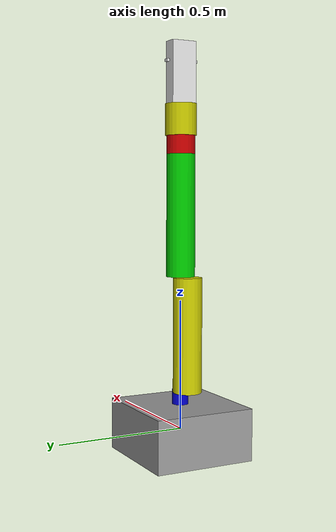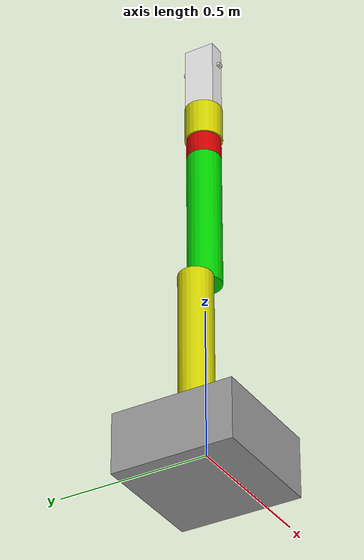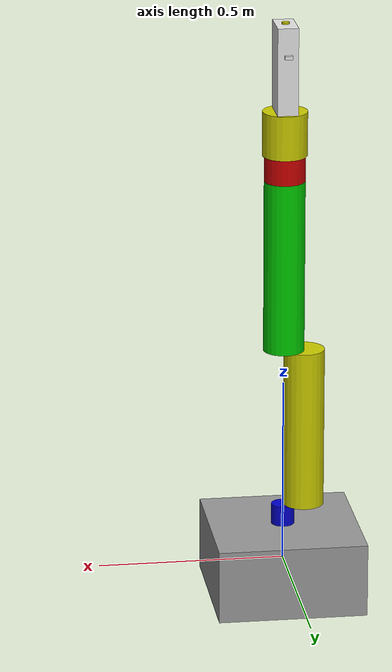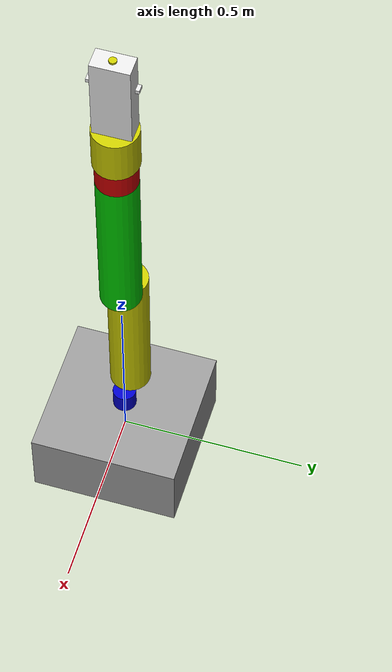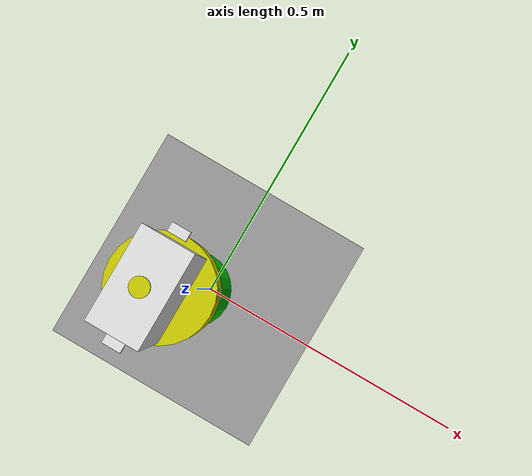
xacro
<?xml version="1.0"?>
<robot name="manipulador">

  <!-- 1. BASE -->
  <link name="base_link">
    <inertial>
      <origin xyz="0 0 0" rpy="0 0 0"/>
      <mass value="5.0"/>
      <inertia ixx="0.1" ixy="0.0" ixz="0.0"
               iyy="0.1" iyz="0.0"
               izz="0.1"/>
    </inertial>
    <visual>
      <origin xyz="0 0 0" rpy="0 0 0"/>
      <geometry>
        <box size="0.4 0.4 0.2"/>
      </geometry>
      <material name="grey">
        <color rgba="0.6 0.6 0.6 1.0"/>
      </material>
    </visual>
    <collision>
      <origin xyz="0 0 0" rpy="0 0 0"/>
      <geometry>
        <box size="0.4 0.4 0.2"/>
      </geometry>
    </collision>
  </link>

  <!-- 2. LINK1 -->
  <link name="link1">
    <inertial>
      <origin xyz="0 0 0.075" rpy="0 0 0"/>
      <mass value="2.0"/>
      <inertia ixx="0.000534" ixy="0.0" ixz="0.0"
               iyy="0.000534" iyz="0.0"
               izz="0.000992"/>
    </inertial>
    <visual>
      <origin xyz="0 0 0.0275" rpy="0 0 0"/>
      <geometry>
        <cylinder radius="0.0315" length="0.055"/>
      </geometry>
      <material name="blue">
        <color rgba="0.0 0.0 0.8 1.0"/>
      </material>
    </visual>
    <collision>
      <origin xyz="0 0 0.0275" rpy="0 0 0"/>
      <geometry>
        <cylinder radius="0.0315" length="0.15"/>
      </geometry>
    </collision>
  </link>

  <!-- 3. LINK2 -->
  <link name="link2">
    <inertial>
      <origin xyz="-0.055 0.0 0.21" rpy="0 0 0"/>
      <mass value="1"/>
      <inertia ixx="0.000903" ixy="0.0" ixz="0.0"
               iyy="0.000903" iyz="0.0"
               izz="0.001513"/>
    </inertial>
    <visual>
      <origin xyz="-0.055 0.0 0.22" rpy="0 0 0"/>
      <geometry>
        <cylinder radius="0.055" length="0.44"/>
      </geometry>
      <material name="yellow">
        <color rgba="0.8 0.8 0.0 1.0"/>
      </material>
    </visual>
    <collision>
      <origin xyz="-0.055 0.0 0.22" rpy="0 0 0"/>
      <geometry>
        <cylinder radius="0.055" length="0.44"/>
      </geometry>
    </collision>
  </link>

  <!-- 4. LINK3 -->
  <link name="link3">
    <inertial>
      <origin xyz="0 0.0 0.235" rpy="0 0 0"/>
      <mass value="3"/>
      <inertia ixx="0.002753" ixy="0.0" ixz="0.0"
               iyy="0.002753" iyz="0.0"
               izz="0.004538"/>
    </inertial>
    <visual>
      <origin xyz="0 0.0 0.235" rpy="0 0 0"/>
      <geometry>
        <cylinder radius="0.055" length="0.47"/>
      </geometry>
      <material name="green">
        <color rgba="0.0 0.8 0.0 1.0"/>
      </material>
    </visual>
    <collision>
      <origin xyz="0 0.0 0.235" rpy="0 0 0"/>
      <geometry>
        <cylinder radius="0.055" length="0.47"/>
      </geometry>
    </collision>
  </link>

  <!-- 5. LINK4 (inicio muñeca) -->
  <link name="link4">
    <inertial>
      <origin xyz="0 0 0.035" rpy="0 0 0"/>
      <mass value="0.7"/>
      <inertia ixx="0.000535" ixy="0.0" ixz="0.0"
               iyy="0.000535" iyz="0.0"
               izz="0.001059"/>
    </inertial>
    <visual>
      <origin xyz="0 0 0.035" rpy="0 0 0"/>
      <geometry>
        <cylinder radius="0.055" length="0.07"/>
      </geometry>
      <material name="red">
        <color rgba="0.8 0.0 0.0 1.0"/>
      </material>
    </visual>
    <collision>
      <origin xyz="0 0 0.035" rpy="0 0 0"/>
      <geometry>
        <cylinder radius="0.055" length="0.07"/>
      </geometry>
    </collision>
  </link>

  <!-- 6. LINK5 -->
  <link name="link5">
    <inertial>
      <origin xyz="0 0.0 0.06" rpy="0 0 0"/>
      <mass value="1"/>
      <inertia ixx="0.004233" ixy="0.0" ixz="0.0"
               iyy="0.004233" iyz="0.0"
               izz="0.0018"/>
    </inertial>
    <visual>
      <origin xyz="0 0.0 0.06" rpy="0 0 0"/>
      <geometry>
        <cylinder radius="0.06" length="0.12"/>
      </geometry>
      <material name="yellow">
        <color rgba="0.8 0.8 0.0 1.0"/>
      </material>
    </visual>
    <collision>
      <origin xyz="0 0.0 0.06" rpy="0 0 0"/>
      <geometry>
        <cylinder radius="0.06" length="0.12"/>
      </geometry>
    </collision>
  </link>

  <!-- 7. LINK6 (flange / herramienta) -->
  <link name="link6">
    <inertial>
      <origin xyz="0 0 0.1175" rpy="0 0 0"/>
      <mass value="1.5"/>
      <inertia ixx="0.0073" ixy="0.0" ixz="0.0"
               iyy="0.006428" iyz="0.0"
               izz="0.001628"/>
    </inertial>
    <visual>
      <origin xyz="0 0 0.1175" rpy="0 0 0"/>
      <geometry>
        <box size="0.055 0.1 0.235"/>
      </geometry>
      <material name="white">
        <color rgba="0.9 0.9 0.9 1.0"/>
      </material>
    </visual>
    <collision>
      <origin xyz="0 0 0.1175" rpy="0 0 0"/>
      <geometry>
        <box size="0.055 0.1 0.235"/>
      </geometry>
    </collision>
  </link>

  <!-- 8. LINK7 -->
  <link name="link7">
    <inertial>
      <origin xyz="0 0.0 0.0" rpy="0 0 0"/>
      <mass value="1"/>
      <inertia ixx="0.004233" ixy="0.0" ixz="0.0"
               iyy="0.004233" iyz="0.0"
               izz="0.0018"/>
    </inertial>
    <visual>
      <origin xyz="0 0.0 0.0" rpy="0 0 0"/>
      <geometry>
        <cylinder radius="0.01" length="0.01"/>
      </geometry>
      <material name="yellow">
        <color rgba="0.8 0.8 0.0 1.0"/>
      </material>
    </visual>
    <collision>
      <origin xyz="0 0.0 0.0" rpy="0 0 0"/>
      <geometry>
        <cylinder radius="0.01" length="0.01"/>
      </geometry>
    </collision>
  </link>

  <!-- 9. LINK8 (dedo izquierdo) -->
  <link name="link8">
    <inertial>
      <origin xyz="0 0.03 0.05" rpy="0 0 0"/>
      <mass value="0.5"/>
      <inertia ixx="0.0073" ixy="0.0" ixz="0.0"
               iyy="0.006428" iyz="0.0"
               izz="0.001628"/>
    </inertial>
    <visual>
      <origin xyz="0 0.03 0.05" rpy="0 0 0"/>
      <geometry>
        <box size="0.02 0.01 0.01"/>
      </geometry>
      <material name="white">
        <color rgba="0.9 0.9 0.9 1.0"/>
      </material>
    </visual>
    <collision>
      <origin xyz="0 0.03 0.05" rpy="0 0 0"/>
      <geometry>
        <box size="0.02 0.01 0.01"/>
      </geometry>
    </collision>
  </link>

  <!-- 10. LINK9 (dedo dcha) -->
  <link name="link9">
    <inertial>
      <origin xyz="0 -0.03 0.05" rpy="0 0 0"/>
      <mass value="0.5"/>
      <inertia ixx="0.0073" ixy="0.0" ixz="0.0"
               iyy="0.006428" iyz="0.0"
               izz="0.001628"/>
    </inertial>
    <visual>
      <origin xyz="0 -0.03 0.05" rpy="0 0 0"/>
      <geometry>
        <box size="0.02 0.01 0.01"/>
      </geometry>
      <material name="white">
        <color rgba="0.9 0.9 0.9 1.0"/>
      </material>
    </visual>
    <collision>
      <origin xyz="0 -0.03 0.05" rpy="0 0 0"/>
      <geometry>
        <box size="0.02 0.01 0.01"/>
      </geometry>
    </collision>
  </link>

  <!-- JOINT1: base_link -> link1 -->
  <joint name="joint1" type="revolute">
    <parent link="base_link"/>
    <child link="link1"/>
    <!-- El frame del joint está en la parte superior de la base -->
    <origin xyz="0 0 0.1" rpy="0 0 0"/>
    <!-- Eje de rotación: z -->
    <axis xyz="0 0 -1"/>
    <limit lower="-6.28" upper="6.28" effort="50" velocity="1.5"/>
  </joint>

  <!-- JOINT2: link1 -> link2 -->
  <joint name="joint2" type="revolute">
    <parent link="link1"/>
    <child link="link2"/>
    <!-- Colocamos el joint al final de link1, en z=0.2 -->
    <origin xyz="0 0 0.055" rpy="0 0 0"/>
    <!-- Eje de rotación: y -->
    <axis xyz="1 0 0"/>
    <limit lower="-6.28" upper="6.28" effort="40" velocity="1.5"/>
  </joint>

  <!-- JOINT3: link2 -> link3 -->
  <joint name="joint3" type="revolute">
    <parent link="link2"/>
    <child link="link3"/>
    <!-- Al final de link2, que mide 0.5 en z -->
    <origin xyz="0 0 0.44" rpy="0 0 0"/>
    <!-- Eje de rotación: y -->
    <axis xyz="-1 0 0"/>
    <limit lower="-6.28" upper="6.28" effort="30" velocity="1.5"/>
  </joint>

  <!-- JOINT4: link3 -> link4 (primer eje de muñeca) -->
  <joint name="joint4" type="revolute">
    <parent link="link3"/>
    <child link="link4"/>
    <!-- Centro de muñeca: al final de link3 (0.5 en z) -->
    <origin xyz="0 0 0.47" rpy="0 0 0"/>
    <!-- Eje de rotación: z -->
    <axis xyz="0 0 1"/>
    <limit lower="-6.28" upper="6.28" effort="20" velocity="2.0"/>
  </joint>

  <!-- JOINT5: link4 -> link5 (segundo eje de muñeca) -->
  <joint name="joint5" type="revolute">
    <parent link="link4"/>
    <child link="link5"/>
    <!-- Mismo punto físico (centro de muñeca) -->
    <origin xyz="0 0 0.07" rpy="0 0 0"/>
    <!-- Eje de rotación: y -->
    <axis xyz="1 0 0"/>
    <limit lower="-6.28" upper="6.28" effort="20" velocity="2.0"/>
  </joint>

  <!-- JOINT6: link5 -> link6 (tercer eje de muñeca) -->
  <joint name="joint6" type="revolute">
    <parent link="link5"/>
    <child link="link6"/>
    <!-- Mismo punto físico (centro de muñeca) -->
    <origin xyz="0 0 0.12" rpy="0 0 0"/>
   <!-- Eje de rotación: z -->
    <axis xyz="0 0 -1"/>
    <limit lower="-6.28" upper="6.28" effort="20" velocity="2.0"/>
  </joint>

  <!-- JOINT7: link6 -> link7 (dedo izda) -->
  <joint name="joint55" type="fixed">
    <parent link="link6"/>
    <child link="link7"/>
    <origin xyz="0 0.0 0.235" rpy="0 0 0"/>
  </joint>

  <!-- JOINT7: link6 -> link8 (dedo izda) -->
  <joint name="joint7" type="revolute">
    <parent link="link6"/>
    <child link="link8"/>
    <!-- Mismo punto físico (centro de muñeca) -->
    <origin xyz="0 0.03 0.11" rpy="0 0 0"/>
   <!-- Eje de rotación: y -->
    <axis xyz="0 1 0"/>
    <limit lower="-6.28" upper="6.28" effort="20" velocity="8.0"/>
  </joint>

  <!-- JOINT8: link6 -> link9 (dedo dcha) -->
  <joint name="joint8" type="revolute">
    <parent link="link6"/>
    <child link="link9"/>
    <!-- Mismo punto físico (centro de muñeca) -->
    <origin xyz="0 -0.03 0.11" rpy="0 0 0"/>
   <!-- Eje de rotación: y -->
    <axis xyz="0 -1 0"/>
    <limit lower="-6.28" upper="6.28" effort="20" velocity="8.0"/>
  </joint>

   <!-- ros2_control -->

  <ros2_control name="MiSystem" type="system">
  <hardware>
    <plugin>hardware/HwInterface</plugin>
    <!-- {Name_Space}/{Class_Name} -->
  </hardware>

  <!-- Joint 1 -->
  <joint name="joint1">
    <command_interface name="velocity"/>
    <state_interface name="position"/>
    <state_interface name="velocity"/>
  </joint>

  <!-- Joint 2 -->
  <joint name="joint2">
    <command_interface name="velocity"/>
    <state_interface name="position"/>
    <state_interface name="velocity"/>
  </joint>

  <!-- Joint 3 -->
  <joint name="joint3">
    <command_interface name="velocity"/>
    <state_interface name="position"/>
    <state_interface name="velocity"/>
  </joint>

  <!-- Joint 4 -->
  <joint name="joint4">
    <command_interface name="velocity"/>
    <state_interface name="position"/>
    <state_interface name="velocity"/>
  </joint>

  <!-- Joint 5 -->
  <joint name="joint5">
    <command_interface name="velocity"/>
    <state_interface name="position"/>
    <state_interface name="velocity"/>
  </joint>

  <!-- Joint 6 -->
  <joint name="joint6">
    <command_interface name="velocity"/>
    <state_interface name="position"/>
    <state_interface name="velocity"/>
  </joint>

  <!-- Joint 7 -->
  <joint name="joint7">
    <command_interface name="velocity"/>
    <state_interface name="position"/>
    <state_interface name="velocity"/>
  </joint>

  <!-- Joint 8 -->
  <joint name="joint8">
    <command_interface name="velocity"/>
    <state_interface name="position"/>
    <state_interface name="velocity"/>
  </joint>

</ros2_control>

</robot>
